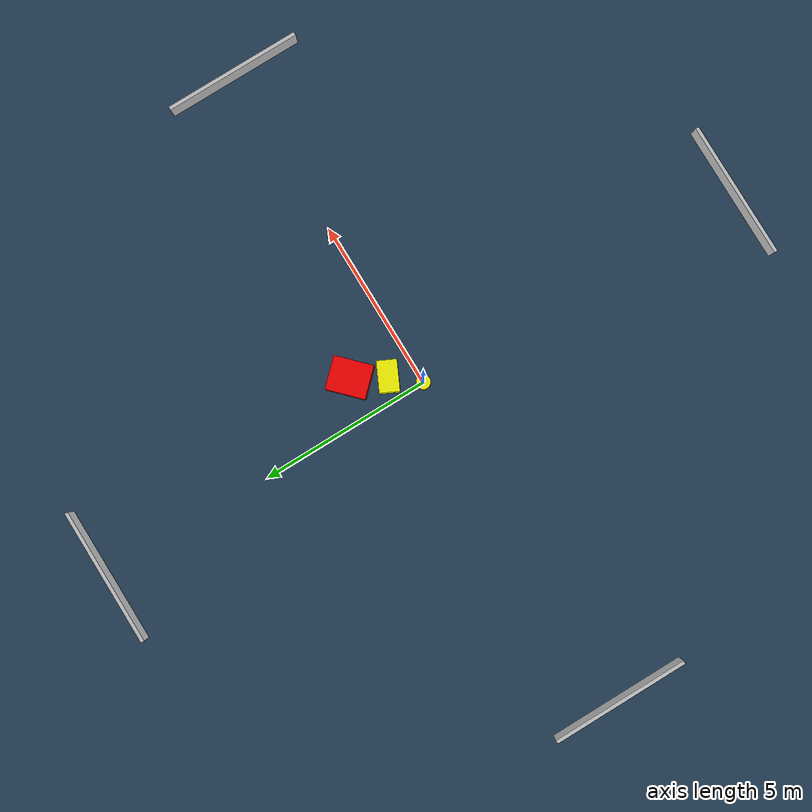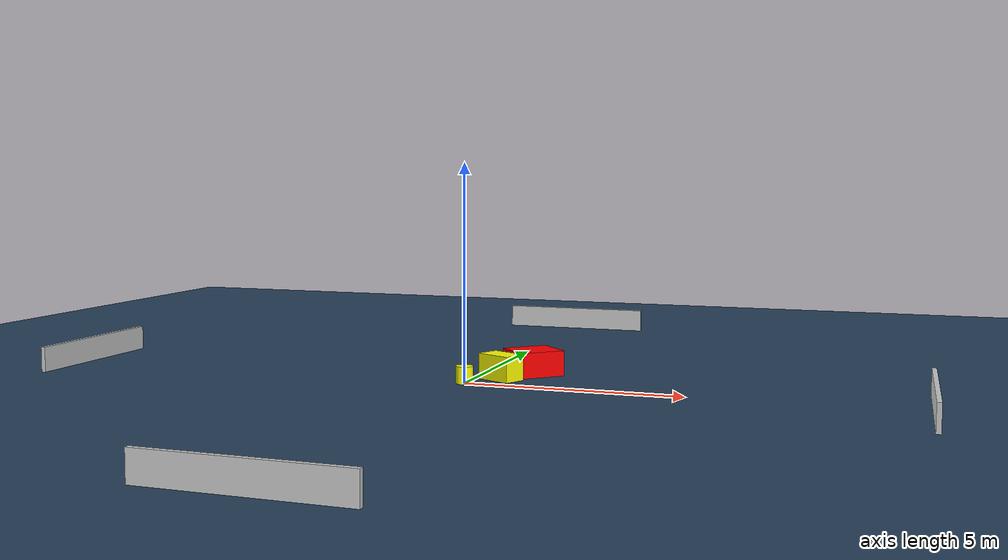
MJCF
<?xml version="1.0" ?>
<mujoco model="generated_environment">
  <option timestep="0.01" integrator="RK4" cone="elliptic"/>
  <default>
    <geom density="1"/>
  </default>
  <asset>
    <texture builtin="gradient" height="3072" name="skybox" rgb1="0.3 0.5 0.7" rgb2="0 0 0" type="skybox" width="512"/>
    <texture builtin="checker" height="300" name="groundplane" rgb1="0.2 0.3 0.4" rgb2="0.1 0.2 0.3" type="2d" width="300"/>
    <material name="groundplane" reflectance="0.2" texrepeat="5 5" texture="groundplane"/>
  </asset>
  <worldbody>
    <light dir="0 0 -1" directional="true" pos="0 0 1.5"/>
    <geom condim="3" friction="0.5 0.005 0.001" material="groundplane" name="floor" pos="0 0 0" size="0 0 0.05" type="plane"/>
    <body name="walls">
      <geom name="wall_1" condim="4" pos="-10.0 0.0 0.3" rgba="0.800000011920929 0.800000011920929 0.800000011920929 1.0" size="0.05 2.0 0.3" type="box"/>
      <geom name="wall_2" condim="4" pos="10.0 0.0 0.3" rgba="0.800000011920929 0.800000011920929 0.800000011920929 1.0" size="0.05 2.0 0.3" type="box"/>
      <geom name="wall_3" condim="4" pos="0.0 -10.0 0.3" rgba="0.800000011920929 0.800000011920929 0.800000011920929 1.0" size="2.0 0.05 0.3" type="box"/>
      <geom name="wall_4" condim="4" pos="0.0 10.0 0.3" rgba="0.800000011920929 0.800000011920929 0.800000011920929 1.0" size="2.0 0.05 0.3" type="box"/>
    </body>
    <body name="robot">
      <joint name="joint_x" type="slide" pos="0 0 0" axis="1 0 0"/>
      <joint name="joint_y" type="slide" pos="0 0 0" axis="0 1 0"/>
      <geom name="robot" type="cylinder" pos="0.0 0.0 0.2" size="0.2 0.2 0.0" mass="5.0" friction="1.0 0.005 0.0001" condim="4" rgba="1.0 1.0 0.0 1.0"/>
    </body>
    <body name="obstacle_1_movable">
      <geom name="obstacle_1_movable" condim="4" pos="0.6297336099563233 0.7346301299299273 0.3" euler="0 0 334.27134063805255" friction="0.0 0.005 0.001" rgba="1.0 1.0 0.0 1.0" size="0.4393406880569959 0.282576319022013 0.3" type="box" mass="0.1"/>
      <joint type="free"/>
    </body>
    <body name="obstacle_2_static">
      <geom name="obstacle_2_static" condim="4" pos="1.1452783428613869 1.6387010354618081 0.3" euler="0 0 133.96624861088333" friction="0.0 0.005 0.001" rgba="1.0 0.0 0.0 1.0" size="0.4754837603602212 0.5604994613719677 0.3" type="box"/>
    </body>
  </worldbody>
  <actuator>
    <motor name="actuator_x" joint="joint_x" gear="1" ctrlrange="-1 1"/>
    <motor name="actuator_y" joint="joint_y" gear="1" ctrlrange="-1 1"/>
  </actuator>
</mujoco>
